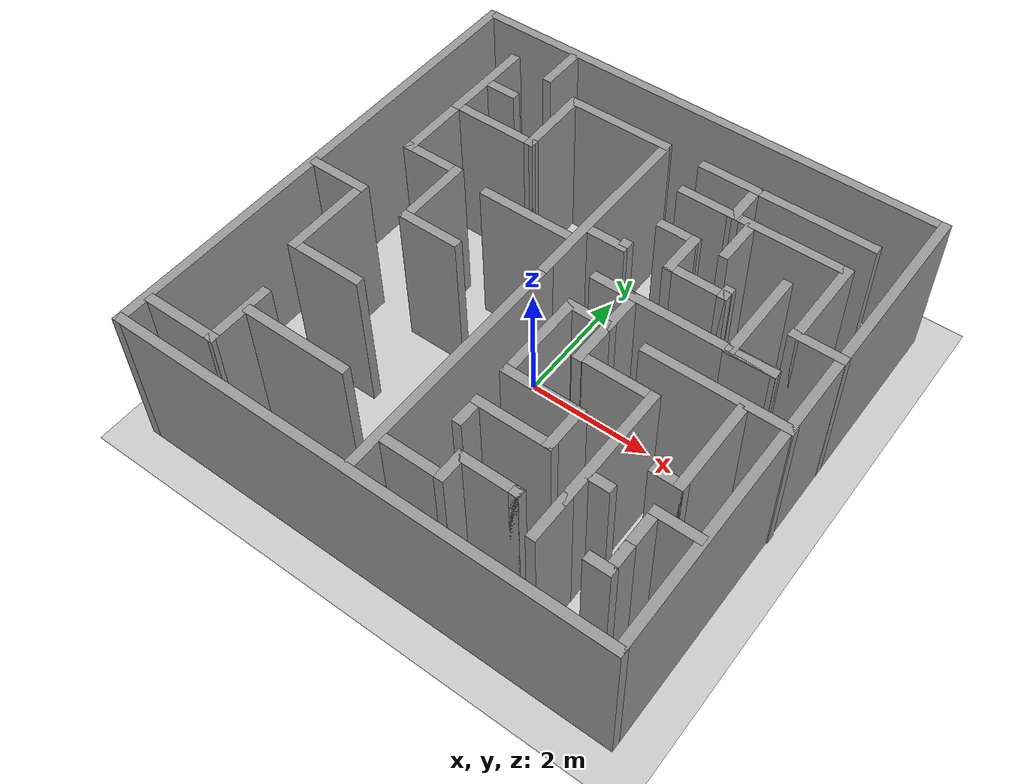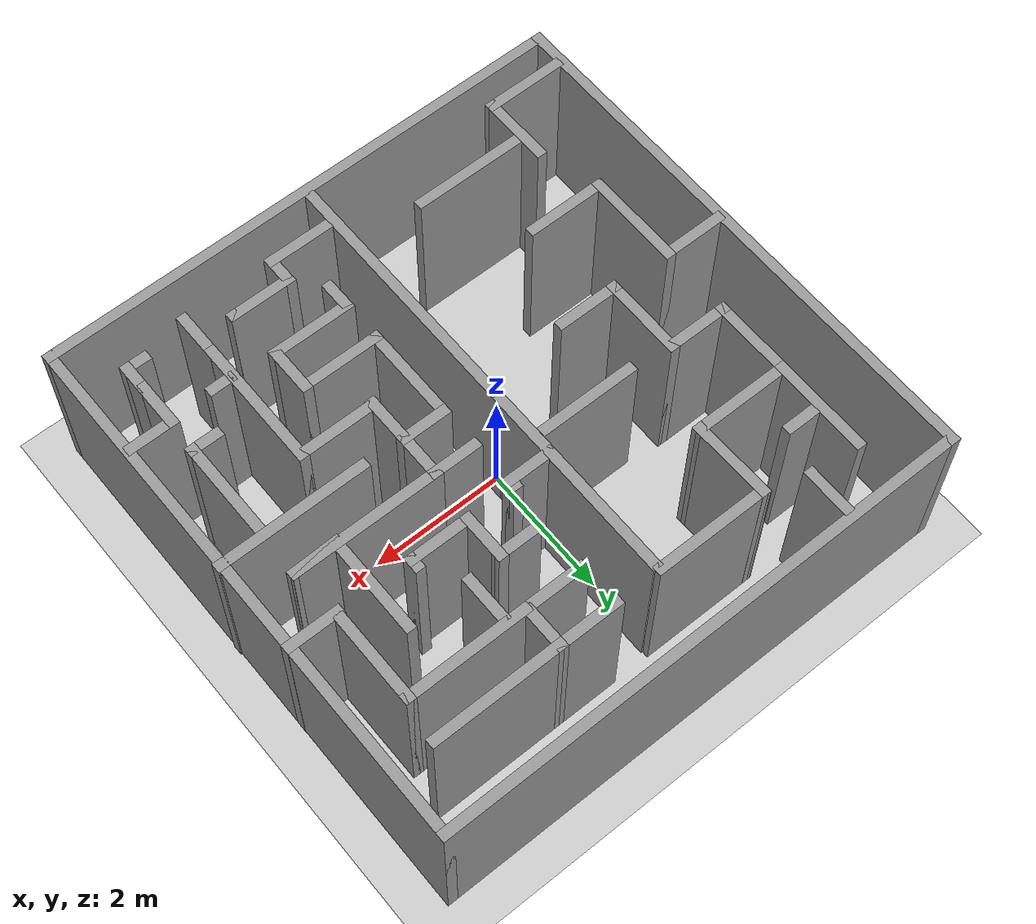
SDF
<sdf version="1.7">
 <world name="default">
  <light name="sun" type="directional">
   <pose>0 0 10 0 -0 0</pose>
   <diffuse>0.8 0.8 0.8 1</diffuse>
   <specular>0.2 0.2 0.2 1</specular>
   <attenuation>
    <range>1000</range>
    <constant>0.9</constant>
    <linear>0.01</linear>
    <quadratic>0.001</quadratic>
   </attenuation>
   <direction>-0.5 0.1 -0.9</direction>
   <spot><inner_angle>0</inner_angle><outer_angle>0</outer_angle><falloff>0</falloff></spot>
  </light>
  <model name="ground_plane">
   <static>1</static>
   <link name="link">
    <collision name="collision">
     <geometry><plane><normal>0 0 1</normal><size>100 100</size></plane></geometry>
     <surface>
      <contact><collide_bitmask>65535</collide_bitmask></contact>
      <friction><ode><mu>100</mu><mu2>50</mu2></ode></friction>
     </surface>
    </collision>
    <visual name="visual">
     <cast_shadows>0</cast_shadows>
     <geometry><plane><normal>0 0 1</normal><size>100 100</size></plane></geometry>
     <material>
      <script><uri>file://media/materials/scripts/gazebo.material</uri><name>Gazebo/Grey</name></script>
     </material>
    </visual>
   </link>
  </model>
  <gravity>0 0 -9.8</gravity>
  <magnetic_field>6e-06 2.3e-05 -4.2e-05</magnetic_field>
  <atmosphere type="adiabatic"/>
  <physics type="ode">
   <max_step_size>0.001</max_step_size>
   <real_time_factor>1</real_time_factor>
   <real_time_update_rate>1000</real_time_update_rate>
  </physics>
  <scene><ambient>0.4 0.4 0.4 1</ambient><background>0.7 0.7 0.7 1</background><shadows>1</shadows></scene>
  <spherical_coordinates>
   <surface_model>EARTH_WGS84</surface_model>
   <latitude_deg>0</latitude_deg>
   <longitude_deg>0</longitude_deg>
   <elevation>0</elevation>
   <heading_deg>0</heading_deg>
  </spherical_coordinates>
  <model name="maze_building">
   <pose>0.106057 0.118959 0 0 -0 0</pose>
   <link name="Wall_101">
    <collision name="Wall_101_Collision">
     <geometry><box><size>1 0.15 2.5</size></box></geometry>
     <pose>0 0 1.25 0 -0 0</pose>
    </collision>
    <visual name="Wall_101_Visual">
     <pose>0 0 1.25 0 -0 0</pose>
     <geometry><box><size>1 0.15 2.5</size></box></geometry>
     <material>
      <script><uri>file://media/materials/scripts/gazebo.material</uri><name>Gazebo/Grey</name></script>
      <ambient>1 1 1 1</ambient>
     </material>
     <meta><layer>0</layer></meta>
    </visual>
    <pose>-3.4489 -0.253857 0 0 -0 0</pose>
   </link>
   <link name="Wall_102">
    <collision name="Wall_102_Collision">
     <geometry><box><size>1.5 0.15 2.5</size></box></geometry>
     <pose>0 0 1.25 0 -0 0</pose>
    </collision>
    <visual name="Wall_102_Visual">
     <pose>0 0 1.25 0 -0 0</pose>
     <geometry><box><size>1.5 0.15 2.5</size></box></geometry>
     <material>
      <script><uri>file://media/materials/scripts/gazebo.material</uri><name>Gazebo/Grey</name></script>
      <ambient>1 1 1 1</ambient>
     </material>
     <meta><layer>0</layer></meta>
    </visual>
    <pose>-3.0239 -0.928857 0 0 -0 -1.5708</pose>
   </link>
   <link name="Wall_103">
    <collision name="Wall_103_Collision">
     <geometry><box><size>1.25 0.15 2.5</size></box></geometry>
     <pose>0 0 1.25 0 -0 0</pose>
    </collision>
    <visual name="Wall_103_Visual">
     <pose>0 0 1.25 0 -0 0</pose>
     <geometry><box><size>1.25 0.15 2.5</size></box></geometry>
     <material>
      <script><uri>file://media/materials/scripts/gazebo.material</uri><name>Gazebo/Grey</name></script>
      <ambient>1 1 1 1</ambient>
     </material>
     <meta><layer>0</layer></meta>
    </visual>
    <pose>-2.4739 -1.60386 0 0 -0 0</pose>
   </link>
   <link name="Wall_111">
    <collision name="Wall_111_Collision">
     <geometry><box><size>1 0.15 2.5</size></box></geometry>
     <pose>0 0 1.25 0 -0 0</pose>
    </collision>
    <visual name="Wall_111_Visual">
     <pose>0 0 1.25 0 -0 0</pose>
     <geometry><box><size>1 0.15 2.5</size></box></geometry>
     <material>
      <script><uri>file://media/materials/scripts/gazebo.material</uri><name>Gazebo/Grey</name></script>
      <ambient>1 1 1 1</ambient>
     </material>
     <meta><layer>0</layer></meta>
    </visual>
    <pose>1.05762 2.99832 0 0 -0 3.14159</pose>
   </link>
   <link name="Wall_113">
    <collision name="Wall_113_Collision">
     <geometry><box><size>0.750003 0.15 2.5</size></box></geometry>
     <pose>0 0 1.25 0 -0 0</pose>
    </collision>
    <visual name="Wall_113_Visual">
     <pose>0 0 1.25 0 -0 0</pose>
     <geometry><box><size>0.750003 0.15 2.5</size></box></geometry>
     <material>
      <script><uri>file://media/materials/scripts/gazebo.material</uri><name>Gazebo/Grey</name></script>
      <ambient>1 1 1 1</ambient>
     </material>
     <meta><layer>0</layer></meta>
    </visual>
    <pose>1.48362 2.69832 0 0 -0 -1.56744</pose>
   </link>
   <link name="Wall_115">
    <collision name="Wall_115_Collision">
     <geometry><box><size>2 0.15 2.5</size></box></geometry>
     <pose>0 0 1.25 0 -0 0</pose>
    </collision>
    <visual name="Wall_115_Visual">
     <pose>0 0 1.25 0 -0 0</pose>
     <geometry><box><size>2 0.15 2.5</size></box></geometry>
     <material>
      <script><uri>file://media/materials/scripts/gazebo.material</uri><name>Gazebo/Grey</name></script>
      <ambient>1 1 1 1</ambient>
     </material>
     <meta><layer>0</layer></meta>
    </visual>
    <pose>2.40762 2.99832 0 0 -0 0</pose>
   </link>
   <link name="Wall_121">
    <collision name="Wall_121_Collision">
     <geometry><box><size>0.75 0.15 2.5</size></box></geometry>
     <pose>0 0 1.25 0 -0 0</pose>
    </collision>
    <visual name="Wall_121_Visual">
     <pose>0 0 1.25 0 -0 0</pose>
     <geometry><box><size>0.75 0.15 2.5</size></box></geometry>
     <material>
      <script><uri>file://media/materials/scripts/gazebo.material</uri><name>Gazebo/Grey</name></script>
      <ambient>1 1 1 1</ambient>
     </material>
     <meta><layer>0</layer></meta>
    </visual>
    <pose>-2.28708 3.50568 0 0 -0 -1.5708</pose>
   </link>
   <link name="Wall_124">
    <collision name="Wall_124_Collision">
     <geometry><box><size>1.87664 0.15 2.5</size></box></geometry>
     <pose>0 0 1.25 0 -0 0</pose>
    </collision>
    <visual name="Wall_124_Visual">
     <pose>0 0 1.25 0 -0 0</pose>
     <geometry><box><size>1.87664 0.15 2.5</size></box></geometry>
     <material>
      <script><uri>file://media/materials/scripts/gazebo.material</uri><name>Gazebo/Grey</name></script>
      <ambient>1 1 1 1</ambient>
     </material>
     <meta><layer>0</layer></meta>
    </visual>
    <pose>2.37879 2.39832 0 0 -0 0</pose>
   </link>
   <link name="Wall_125">
    <collision name="Wall_125_Collision">
     <geometry><box><size>1.5 0.15 2.5</size></box></geometry>
     <pose>0 0 1.25 0 -0 0</pose>
    </collision>
    <visual name="Wall_125_Visual">
     <pose>0 0 1.25 0 -0 0</pose>
     <geometry><box><size>1.5 0.15 2.5</size></box></geometry>
     <material>
      <script><uri>file://media/materials/scripts/gazebo.material</uri><name>Gazebo/Grey</name></script>
      <ambient>1 1 1 1</ambient>
     </material>
     <meta><layer>0</layer></meta>
    </visual>
    <pose>3.24211 1.72332 0 0 -0 -1.5708</pose>
   </link>
   <link name="Wall_126">
    <collision name="Wall_126_Collision">
     <geometry><box><size>0.842522 0.15 2.5</size></box></geometry>
     <pose>0 0 1.25 0 -0 0</pose>
    </collision>
    <visual name="Wall_126_Visual">
     <pose>0 0 1.25 0 -0 0</pose>
     <geometry><box><size>0.842522 0.15 2.5</size></box></geometry>
     <material>
      <script><uri>file://media/materials/scripts/gazebo.material</uri><name>Gazebo/Grey</name></script>
      <ambient>1 1 1 1</ambient>
     </material>
     <meta><layer>0</layer></meta>
    </visual>
    <pose>3.57295 1.04832 0 0 -0 0</pose>
   </link>
   <link name="Wall_128">
    <collision name="Wall_128_Collision">
     <geometry><box><size>0.75 0.15 2.5</size></box></geometry>
     <pose>0 0 1.25 0 -0 0</pose>
    </collision>
    <visual name="Wall_128_Visual">
     <pose>0 0 1.25 0 -0 0</pose>
     <geometry><box><size>0.75 0.15 2.5</size></box></geometry>
     <material>
      <script><uri>file://media/materials/scripts/gazebo.material</uri><name>Gazebo/Grey</name></script>
      <ambient>1 1 1 1</ambient>
     </material>
     <meta><layer>0</layer></meta>
    </visual>
    <pose>1.77858 2.00722 0 0 -0 -1.5708</pose>
   </link>
   <link name="Wall_136">
    <collision name="Wall_136_Collision">
     <geometry><box><size>1.5 0.15 2.5</size></box></geometry>
     <pose>0 0 1.25 0 -0 0</pose>
    </collision>
    <visual name="Wall_136_Visual">
     <pose>0 0 1.25 0 -0 0</pose>
     <geometry><box><size>1.5 0.15 2.5</size></box></geometry>
     <material>
      <script><uri>file://media/materials/scripts/gazebo.material</uri><name>Gazebo/Grey</name></script>
      <ambient>1 1 1 1</ambient>
     </material>
     <meta><layer>0</layer></meta>
    </visual>
    <pose>2.69789 1.03313 0 0 -0 -1.5708</pose>
   </link>
   <link name="Wall_137">
    <collision name="Wall_137_Collision">
     <geometry><box><size>0.768751 0.15 2.5</size></box></geometry>
     <pose>0 0 1.25 0 -0 0</pose>
    </collision>
    <visual name="Wall_137_Visual">
     <pose>0 0 1.25 0 -0 0</pose>
     <geometry><box><size>0.768751 0.15 2.5</size></box></geometry>
     <material>
      <script><uri>file://media/materials/scripts/gazebo.material</uri><name>Gazebo/Grey</name></script>
      <ambient>1 1 1 1</ambient>
     </material>
     <meta><layer>0</layer></meta>
    </visual>
    <pose>3.00676 0.331534 0 0 -0 0.028699</pose>
   </link>
   <link name="Wall_138">
    <collision name="Wall_138_Collision">
     <geometry><box><size>2.25 0.15 2.5</size></box></geometry>
     <pose>0 0 1.25 0 -0 0</pose>
    </collision>
    <visual name="Wall_138_Visual">
     <pose>0 0 1.25 0 -0 0</pose>
     <geometry><box><size>2.25 0.15 2.5</size></box></geometry>
     <material>
      <script><uri>file://media/materials/scripts/gazebo.material</uri><name>Gazebo/Grey</name></script>
      <ambient>1 1 1 1</ambient>
     </material>
     <meta><layer>0</layer></meta>
    </visual>
    <pose>2.26562 0.340401 0 0 -0 3.14159</pose>
   </link>
   <link name="Wall_139">
    <collision name="Wall_139_Collision">
     <geometry><box><size>0.75 0.15 2.5</size></box></geometry>
     <pose>0 0 1.25 0 -0 0</pose>
    </collision>
    <visual name="Wall_139_Visual">
     <pose>0 0 1.25 0 -0 0</pose>
     <geometry><box><size>0.75 0.15 2.5</size></box></geometry>
     <material>
      <script><uri>file://media/materials/scripts/gazebo.material</uri><name>Gazebo/Grey</name></script>
      <ambient>1 1 1 1</ambient>
     </material>
     <meta><layer>0</layer></meta>
    </visual>
    <pose>1.21562 0.040401 0 0 -0 -1.5708</pose>
   </link>
   <link name="Wall_140">
    <collision name="Wall_140_Collision">
     <geometry><box><size>0.75 0.15 2.5</size></box></geometry>
     <pose>0 0 1.25 0 -0 0</pose>
    </collision>
    <visual name="Wall_140_Visual">
     <pose>0 0 1.25 0 -0 0</pose>
     <geometry><box><size>0.75 0.15 2.5</size></box></geometry>
     <material>
      <script><uri>file://media/materials/scripts/gazebo.material</uri><name>Gazebo/Grey</name></script>
      <ambient>1 1 1 1</ambient>
     </material>
     <meta><layer>0</layer></meta>
    </visual>
    <pose>0.915624 -0.259599 0 0 -0 3.14159</pose>
   </link>
   <link name="Wall_141">
    <collision name="Wall_141_Collision">
     <geometry><box><size>1.5 0.15 2.5</size></box></geometry>
     <pose>0 0 1.25 0 -0 0</pose>
    </collision>
    <visual name="Wall_141_Visual">
     <pose>0 0 1.25 0 -0 0</pose>
     <geometry><box><size>1.5 0.15 2.5</size></box></geometry>
     <material>
      <script><uri>file://media/materials/scripts/gazebo.material</uri><name>Gazebo/Grey</name></script>
      <ambient>1 1 1 1</ambient>
     </material>
     <meta><layer>0</layer></meta>
    </visual>
    <pose>0.615624 -0.934599 0 0 -0 -1.5708</pose>
   </link>
   <link name="Wall_142">
    <collision name="Wall_142_Collision">
     <geometry><box><size>1.25 0.15 2.5</size></box></geometry>
     <pose>0 0 1.25 0 -0 0</pose>
    </collision>
    <visual name="Wall_142_Visual">
     <pose>0 0 1.25 0 -0 0</pose>
     <geometry><box><size>1.25 0.15 2.5</size></box></geometry>
     <material>
      <script><uri>file://media/materials/scripts/gazebo.material</uri><name>Gazebo/Grey</name></script>
      <ambient>1 1 1 1</ambient>
     </material>
     <meta><layer>0</layer></meta>
    </visual>
    <pose>1.16562 -1.6096 0 0 -0 0</pose>
   </link>
   <link name="Wall_143">
    <collision name="Wall_143_Collision">
     <geometry><box><size>0.75 0.15 2.5</size></box></geometry>
     <pose>0 0 1.25 0 -0 0</pose>
    </collision>
    <visual name="Wall_143_Visual">
     <pose>0 0 1.25 0 -0 0</pose>
     <geometry><box><size>0.75 0.15 2.5</size></box></geometry>
     <material>
      <script><uri>file://media/materials/scripts/gazebo.material</uri><name>Gazebo/Grey</name></script>
      <ambient>1 1 1 1</ambient>
     </material>
     <meta><layer>0</layer></meta>
    </visual>
    <pose>1.71562 -1.9096 0 0 -0 -1.5708</pose>
   </link>
   <link name="Wall_144">
    <collision name="Wall_144_Collision">
     <geometry><box><size>1.25 0.15 2.5</size></box></geometry>
     <pose>0 0 1.25 0 -0 0</pose>
    </collision>
    <visual name="Wall_144_Visual">
     <pose>0 0 1.25 0 -0 0</pose>
     <geometry><box><size>1.25 0.15 2.5</size></box></geometry>
     <material>
      <script><uri>file://media/materials/scripts/gazebo.material</uri><name>Gazebo/Grey</name></script>
      <ambient>1 1 1 1</ambient>
     </material>
     <meta><layer>0</layer></meta>
    </visual>
    <pose>1.16562 -2.2096 0 0 -0 3.14159</pose>
   </link>
   <link name="Wall_149">
    <collision name="Wall_149_Collision">
     <geometry><box><size>0.780841 0.15 2.5</size></box></geometry>
     <pose>0 0 1.25 0 -0 0</pose>
    </collision>
    <visual name="Wall_149_Visual">
     <pose>0 0 1.25 0 -0 0</pose>
     <geometry><box><size>0.780841 0.15 2.5</size></box></geometry>
     <material>
      <script><uri>file://media/materials/scripts/gazebo.material</uri><name>Gazebo/Grey</name></script>
      <ambient>1 1 1 1</ambient>
     </material>
     <meta><layer>0</layer></meta>
    </visual>
    <pose>1.21562 -0.57502 0 0 -0 -1.5708</pose>
   </link>
   <link name="Wall_152">
    <collision name="Wall_152_Collision">
     <geometry><box><size>1.25 0.15 2.5</size></box></geometry>
     <pose>0 0 1.25 0 -0 0</pose>
    </collision>
    <visual name="Wall_152_Visual">
     <pose>0 0 1.25 0 -0 0</pose>
     <geometry><box><size>1.25 0.15 2.5</size></box></geometry>
     <material>
      <script><uri>file://media/materials/scripts/gazebo.material</uri><name>Gazebo/Grey</name></script>
      <ambient>1 1 1 1</ambient>
     </material>
     <meta><layer>0</layer></meta>
    </visual>
    <pose>1.76562 -0.87502 0 0 -0 0</pose>
   </link>
   <link name="Wall_154">
    <collision name="Wall_154_Collision">
     <geometry><box><size>2.25 0.15 2.5</size></box></geometry>
     <pose>0 0 1.25 0 -0 0</pose>
    </collision>
    <visual name="Wall_154_Visual">
     <pose>0 0 1.25 0 -0 0</pose>
     <geometry><box><size>2.25 0.15 2.5</size></box></geometry>
     <material>
      <script><uri>file://media/materials/scripts/gazebo.material</uri><name>Gazebo/Grey</name></script>
      <ambient>1 1 1 1</ambient>
     </material>
     <meta><layer>0</layer></meta>
    </visual>
    <pose>2.88397 -0.290685 0 0 -0 0</pose>
   </link>
   <link name="Wall_156">
    <collision name="Wall_156_Collision">
     <geometry><box><size>1.5 0.15 2.5</size></box></geometry>
     <pose>0 0 1.25 0 -0 0</pose>
    </collision>
    <visual name="Wall_156_Visual">
     <pose>0 0 1.25 0 -0 0</pose>
     <geometry><box><size>1.5 0.15 2.5</size></box></geometry>
     <material>
      <script><uri>file://media/materials/scripts/gazebo.material</uri><name>Gazebo/Grey</name></script>
      <ambient>1 1 1 1</ambient>
     </material>
     <meta><layer>0</layer></meta>
    </visual>
    <pose>3.29891 -1.07363 0 0 -0 -1.5708</pose>
   </link>
   <link name="Wall_158">
    <collision name="Wall_158_Collision">
     <geometry><box><size>0.5 0.15 2.5</size></box></geometry>
     <pose>0 0 1.25 0 -0 0</pose>
    </collision>
    <visual name="Wall_158_Visual">
     <pose>0 0 1.25 0 -0 0</pose>
     <geometry><box><size>0.5 0.15 2.5</size></box></geometry>
     <material>
      <script><uri>file://media/materials/scripts/gazebo.material</uri><name>Gazebo/Grey</name></script>
      <ambient>1 1 1 1</ambient>
     </material>
     <meta><layer>0</layer></meta>
    </visual>
    <pose>3.12391 -1.74863 0 0 -0 3.14159</pose>
   </link>
   <link name="Wall_160">
    <collision name="Wall_160_Collision">
     <geometry><box><size>2 0.15 2.5</size></box></geometry>
     <pose>0 0 1.25 0 -0 0</pose>
    </collision>
    <visual name="Wall_160_Visual">
     <pose>0 0 1.25 0 -0 0</pose>
     <geometry><box><size>2 0.15 2.5</size></box></geometry>
     <material>
      <script><uri>file://media/materials/scripts/gazebo.material</uri><name>Gazebo/Grey</name></script>
      <ambient>1 1 1 1</ambient>
     </material>
     <meta><layer>0</layer></meta>
    </visual>
    <pose>2.31562 -1.80002 0 0 -0 -1.5708</pose>
   </link>
   <link name="Wall_162">
    <collision name="Wall_162_Collision">
     <geometry><box><size>0.4 0.15 2.5</size></box></geometry>
     <pose>0 0 1.25 0 -0 0</pose>
    </collision>
    <visual name="Wall_162_Visual">
     <pose>0 0 1.25 0 -0 0</pose>
     <geometry><box><size>0.4 0.15 2.5</size></box></geometry>
     <material>
      <script><uri>file://media/materials/scripts/gazebo.material</uri><name>Gazebo/Grey</name></script>
      <ambient>1 1 1 1</ambient>
     </material>
     <meta><layer>0</layer></meta>
    </visual>
    <pose>2.49868 -2.27992 0 0 -0 0</pose>
   </link>
   <link name="Wall_164">
    <collision name="Wall_164_Collision">
     <geometry><box><size>0.75 0.15 2.5</size></box></geometry>
     <pose>0 0 1.25 0 -0 0</pose>
    </collision>
    <visual name="Wall_164_Visual">
     <pose>0 0 1.25 0 -0 0</pose>
     <geometry><box><size>0.75 0.15 2.5</size></box></geometry>
     <material>
      <script><uri>file://media/materials/scripts/gazebo.material</uri><name>Gazebo/Grey</name></script>
      <ambient>1 1 1 1</ambient>
     </material>
     <meta><layer>0</layer></meta>
    </visual>
    <pose>3.56946 -2.23366 0 0 -0 3.14159</pose>
   </link>
   <link name="Wall_171">
    <collision name="Wall_171_Collision">
     <geometry><box><size>0.75 0.15 2.5</size></box></geometry>
     <pose>0 0 1.25 0 -0 0</pose>
    </collision>
    <visual name="Wall_171_Visual">
     <pose>0 0 1.25 0 -0 0</pose>
     <geometry><box><size>0.75 0.15 2.5</size></box></geometry>
     <material>
      <script><uri>file://media/materials/scripts/gazebo.material</uri><name>Gazebo/Grey</name></script>
      <ambient>1 1 1 1</ambient>
     </material>
     <meta><layer>0</layer></meta>
    </visual>
    <pose>3.26946 -2.53366 0 0 -0 -1.5708</pose>
   </link>
   <link name="Wall_174">
    <collision name="Wall_174_Collision">
     <geometry><box><size>0.15 0.15 2.5</size></box></geometry>
     <pose>0 0 1.25 0 -0 0</pose>
    </collision>
    <visual name="Wall_174_Visual">
     <pose>0 0 1.25 0 -0 0</pose>
     <geometry><box><size>0.15 0.15 2.5</size></box></geometry>
     <material>
      <script><uri>file://media/materials/scripts/gazebo.material</uri><name>Gazebo/Grey</name></script>
      <ambient>1 1 1 1</ambient>
     </material>
     <meta><layer>0</layer></meta>
    </visual>
    <pose>0.578634 1.0706 0 0 -0 0</pose>
   </link>
   <link name="Wall_176">
    <collision name="Wall_176_Collision">
     <geometry><box><size>0.5 0.15 2.5</size></box></geometry>
     <pose>0 0 1.25 0 -0 0</pose>
    </collision>
    <visual name="Wall_176_Visual">
     <pose>0 0 1.25 0 -0 0</pose>
     <geometry><box><size>0.5 0.15 2.5</size></box></geometry>
     <material>
      <script><uri>file://media/materials/scripts/gazebo.material</uri><name>Gazebo/Grey</name></script>
      <ambient>1 1 1 1</ambient>
     </material>
     <meta><layer>0</layer></meta>
    </visual>
    <pose>0.615624 -2.3846 0 0 -0 -1.5708</pose>
   </link>
   <link name="Wall_178">
    <collision name="Wall_178_Collision">
     <geometry><box><size>1 0.15 2.5</size></box></geometry>
     <pose>0 0 1.25 0 -0 0</pose>
    </collision>
    <visual name="Wall_178_Visual">
     <pose>0 0 1.25 0 -0 0</pose>
     <geometry><box><size>1 0.15 2.5</size></box></geometry>
     <material>
      <script><uri>file://media/materials/scripts/gazebo.material</uri><name>Gazebo/Grey</name></script>
      <ambient>1 1 1 1</ambient>
     </material>
     <meta><layer>0</layer></meta>
    </visual>
    <pose>0.531884 -3.3285 0 0 -0 0</pose>
   </link>
   <link name="Wall_182">
    <collision name="Wall_182_Collision">
     <geometry><box><size>0.75 0.15 2.5</size></box></geometry>
     <pose>0 0 1.25 0 -0 0</pose>
    </collision>
    <visual name="Wall_182_Visual">
     <pose>0 0 1.25 0 -0 0</pose>
     <geometry><box><size>0.75 0.15 2.5</size></box></geometry>
     <material>
      <script><uri>file://media/materials/scripts/gazebo.material</uri><name>Gazebo/Grey</name></script>
      <ambient>1 1 1 1</ambient>
     </material>
     <meta><layer>0</layer></meta>
    </visual>
    <pose>2.31562 -3.02502 0 0 -0 -1.5708</pose>
   </link>
   <link name="Wall_184">
    <collision name="Wall_184_Collision">
     <geometry><box><size>0.15 0.15 2.5</size></box></geometry>
     <pose>0 0 1.25 0 -0 0</pose>
    </collision>
    <visual name="Wall_184_Visual">
     <pose>0 0 1.25 0 -0 0</pose>
     <geometry><box><size>0.15 0.15 2.5</size></box></geometry>
     <material>
      <script><uri>file://media/materials/scripts/gazebo.material</uri><name>Gazebo/Grey</name></script>
      <ambient>1 1 1 1</ambient>
     </material>
     <meta><layer>0</layer></meta>
    </visual>
    <pose>1.80688 -2.97851 0 0 -0 0</pose>
   </link>
   <link name="Wall_187">
    <collision name="Wall_187_Collision">
     <geometry><box><size>0.5 0.15 2.5</size></box></geometry>
     <pose>0 0 1.25 0 -0 0</pose>
    </collision>
    <visual name="Wall_187_Visual">
     <pose>0 0 1.25 0 -0 0</pose>
     <geometry><box><size>0.5 0.15 2.5</size></box></geometry>
     <material>
      <script><uri>file://media/materials/scripts/gazebo.material</uri><name>Gazebo/Grey</name></script>
      <ambient>1 1 1 1</ambient>
     </material>
     <meta><layer>0</layer></meta>
    </visual>
    <pose>0.956884 -3.1535 0 0 -0 1.5708</pose>
   </link>
   <link name="Wall_188">
    <collision name="Wall_188_Collision">
     <geometry><box><size>1 0.15 2.5</size></box></geometry>
     <pose>0 0 1.25 0 -0 0</pose>
    </collision>
    <visual name="Wall_188_Visual">
     <pose>0 0 1.25 0 -0 0</pose>
     <geometry><box><size>1 0.15 2.5</size></box></geometry>
     <material>
      <script><uri>file://media/materials/scripts/gazebo.material</uri><name>Gazebo/Grey</name></script>
      <ambient>1 1 1 1</ambient>
     </material>
     <meta><layer>0</layer></meta>
    </visual>
    <pose>1.38188 -2.97851 0 0 -0 0</pose>
   </link>
   <link name="Wall_190">
    <collision name="Wall_190_Collision">
     <geometry><box><size>0.5 0.15 2.5</size></box></geometry>
     <pose>0 0 1.25 0 -0 0</pose>
    </collision>
    <visual name="Wall_190_Visual">
     <pose>0 0 1.25 0 -0 0</pose>
     <geometry><box><size>0.5 0.15 2.5</size></box></geometry>
     <material>
      <script><uri>file://media/materials/scripts/gazebo.material</uri><name>Gazebo/Grey</name></script>
      <ambient>1 1 1 1</ambient>
     </material>
     <meta><layer>0</layer></meta>
    </visual>
    <pose>3.26946 -3.00866 0 0 -0 -1.5708</pose>
   </link>
   <link name="Wall_195">
    <collision name="Wall_195_Collision">
     <geometry><box><size>0.75 0.15 2.5</size></box></geometry>
     <pose>0 0 1.25 0 -0 0</pose>
    </collision>
    <visual name="Wall_195_Visual">
     <pose>0 0 1.25 0 -0 0</pose>
     <geometry><box><size>0.75 0.15 2.5</size></box></geometry>
     <material>
      <script><uri>file://media/materials/scripts/gazebo.material</uri><name>Gazebo/Grey</name></script>
      <ambient>1 1 1 1</ambient>
     </material>
     <meta><layer>0</layer></meta>
    </visual>
    <pose>0.278634 0.991246 0 0 -0 3.14159</pose>
   </link>
   <link name="Wall_199">
    <collision name="Wall_199_Collision">
     <geometry><box><size>0.75 0.15 2.5</size></box></geometry>
     <pose>0 0 1.25 0 -0 0</pose>
    </collision>
    <visual name="Wall_199_Visual">
     <pose>0 0 1.25 0 -0 0</pose>
     <geometry><box><size>0.75 0.15 2.5</size></box></geometry>
     <material>
      <script><uri>file://media/materials/scripts/gazebo.material</uri><name>Gazebo/Grey</name></script>
      <ambient>1 1 1 1</ambient>
     </material>
     <meta><layer>0</layer></meta>
    </visual>
    <pose>0.915624 0.340401 0 0 -0 3.14159</pose>
   </link>
   <link name="Wall_204">
    <collision name="Wall_204_Collision">
     <geometry><box><size>0.651 0.15 2.5</size></box></geometry>
     <pose>0 0 1.25 0 -0 0</pose>
    </collision>
    <visual name="Wall_204_Visual">
     <pose>0 0 1.25 0 -0 0</pose>
     <geometry><box><size>0.651 0.15 2.5</size></box></geometry>
     <material>
      <script><uri>file://media/materials/scripts/gazebo.material</uri><name>Gazebo/Grey</name></script>
      <ambient>1 1 1 1</ambient>
     </material>
     <meta><layer>0</layer></meta>
    </visual>
    <pose>1.04444 1.67004 0 0 -0 0</pose>
   </link>
   <link name="Wall_205">
    <collision name="Wall_205_Collision">
     <geometry><box><size>0.75 0.15 2.5</size></box></geometry>
     <pose>0 0 1.25 0 -0 0</pose>
    </collision>
    <visual name="Wall_205_Visual">
     <pose>0 0 1.25 0 -0 0</pose>
     <geometry><box><size>0.75 0.15 2.5</size></box></geometry>
     <material>
      <script><uri>file://media/materials/scripts/gazebo.material</uri><name>Gazebo/Grey</name></script>
      <ambient>1 1 1 1</ambient>
     </material>
     <meta><layer>0</layer></meta>
    </visual>
    <pose>1.29483 1.37017 0 0 -0 -1.57118</pose>
   </link>
   <link name="Wall_206">
    <collision name="Wall_206_Collision">
     <geometry><box><size>1 0.15 2.5</size></box></geometry>
     <pose>0 0 1.25 0 -0 0</pose>
    </collision>
    <visual name="Wall_206_Visual">
     <pose>0 0 1.25 0 -0 0</pose>
     <geometry><box><size>1 0.15 2.5</size></box></geometry>
     <material>
      <script><uri>file://media/materials/scripts/gazebo.material</uri><name>Gazebo/Grey</name></script>
      <ambient>1 1 1 1</ambient>
     </material>
     <meta><layer>0</layer></meta>
    </visual>
    <pose>1.71971 1.07029 0 0 -0 0</pose>
   </link>
   <link name="Wall_207">
    <collision name="Wall_207_Collision">
     <geometry><box><size>0.25 0.15 2.5</size></box></geometry>
     <pose>0 0 1.25 0 -0 0</pose>
    </collision>
    <visual name="Wall_207_Visual">
     <pose>0 0 1.25 0 -0 0</pose>
     <geometry><box><size>0.25 0.15 2.5</size></box></geometry>
     <material>
      <script><uri>file://media/materials/scripts/gazebo.material</uri><name>Gazebo/Grey</name></script>
      <ambient>1 1 1 1</ambient>
     </material>
     <meta><layer>0</layer></meta>
    </visual>
    <pose>2.14471 1.12029 0 0 -0 1.5708</pose>
   </link>
   <link name="Wall_210">
    <collision name="Wall_210_Collision">
     <geometry><box><size>0.4 0.15 2.5</size></box></geometry>
     <pose>0 0 1.25 0 -0 0</pose>
    </collision>
    <visual name="Wall_210_Visual">
     <pose>0 0 1.25 0 -0 0</pose>
     <geometry><box><size>0.4 0.15 2.5</size></box></geometry>
     <material>
      <script><uri>file://media/materials/scripts/gazebo.material</uri><name>Gazebo/Grey</name></script>
      <ambient>1 1 1 1</ambient>
     </material>
     <meta><layer>0</layer></meta>
    </visual>
    <pose>3.14446 -3.18366 0 0 -0 3.14159</pose>
   </link>
   <link name="Wall_212">
    <collision name="Wall_212_Collision">
     <geometry><box><size>1 0.15 2.5</size></box></geometry>
     <pose>0 0 1.25 0 -0 0</pose>
    </collision>
    <visual name="Wall_212_Visual">
     <pose>0 0 1.25 0 -0 0</pose>
     <geometry><box><size>1 0.15 2.5</size></box></geometry>
     <material>
      <script><uri>file://media/materials/scripts/gazebo.material</uri><name>Gazebo/Grey</name></script>
      <ambient>1 1 1 1</ambient>
     </material>
     <meta><layer>0</layer></meta>
    </visual>
    <pose>1.09047 2.39832 0 0 -0 3.14159</pose>
   </link>
   <link name="Wall_55">
    <collision name="Wall_55_Collision">
     <geometry><box><size>8 0.15 2.5</size></box></geometry>
     <pose>0 0 1.25 0 -0 0</pose>
    </collision>
    <visual name="Wall_55_Visual">
     <pose>0 0 1.25 0 -0 0</pose>
     <geometry><box><size>8 0.15 2.5</size></box></geometry>
     <material>
      <script><uri>file://media/materials/scripts/gazebo.material</uri><name>Gazebo/Grey</name></script>
      <ambient>1 1 1 1</ambient>
     </material>
     <meta><layer>0</layer></meta>
    </visual>
    <pose>3.91603 0 0 0 -0 -1.5708</pose>
   </link>
   <link name="Wall_56">
    <collision name="Wall_56_Collision">
     <geometry><box><size>8 0.15 2.5</size></box></geometry>
     <pose>0 0 1.25 0 -0 0</pose>
    </collision>
    <visual name="Wall_56_Visual">
     <pose>0 0 1.25 0 -0 0</pose>
     <geometry><box><size>8 0.15 2.5</size></box></geometry>
     <material>
      <script><uri>file://media/materials/scripts/gazebo.material</uri><name>Gazebo/Grey</name></script>
      <ambient>1 1 1 1</ambient>
     </material>
     <meta><layer>0</layer></meta>
    </visual>
    <pose>-0.008969 -3.925 0 0 -0 3.14159</pose>
   </link>
   <link name="Wall_57">
    <collision name="Wall_57_Collision">
     <geometry><box><size>8 0.15 2.5</size></box></geometry>
     <pose>0 0 1.25 0 -0 0</pose>
    </collision>
    <visual name="Wall_57_Visual">
     <pose>0 0 1.25 0 -0 0</pose>
     <geometry><box><size>8 0.15 2.5</size></box></geometry>
     <material>
      <script><uri>file://media/materials/scripts/gazebo.material</uri><name>Gazebo/Grey</name></script>
      <ambient>1 1 1 1</ambient>
     </material>
     <meta><layer>0</layer></meta>
    </visual>
    <pose>-3.93397 0 0 0 -0 1.5708</pose>
   </link>
   <link name="Wall_58">
    <collision name="Wall_58_Collision">
     <geometry><box><size>8 0.15 2.5</size></box></geometry>
     <pose>0 0 1.25 0 -0 0</pose>
    </collision>
    <visual name="Wall_58_Visual">
     <pose>0 0 1.25 0 -0 0</pose>
     <geometry><box><size>8 0.15 2.5</size></box></geometry>
     <material>
      <script><uri>file://media/materials/scripts/gazebo.material</uri><name>Gazebo/Grey</name></script>
      <ambient>1 1 1 1</ambient>
     </material>
     <meta><layer>0</layer></meta>
    </visual>
    <pose>-0.008969 3.925 0 0 -0 0</pose>
   </link>
   <link name="Wall_62">
    <collision name="Wall_62_Collision">
     <geometry><box><size>3 0.15 2.5</size></box></geometry>
     <pose>0 0 1.25 0 -0 0</pose>
    </collision>
    <visual name="Wall_62_Visual">
     <pose>0 0 1.25 0 -0 0</pose>
     <geometry><box><size>3 0.15 2.5</size></box></geometry>
     <material>
      <script><uri>file://media/materials/scripts/gazebo.material</uri><name>Gazebo/Grey</name></script>
      <ambient>1 1 1 1</ambient>
     </material>
     <meta><layer>0</layer></meta>
    </visual>
    <pose>-0.034537 1.4847 0 0 -0 1.5708</pose>
   </link>
   <link name="Wall_64">
    <collision name="Wall_64_Collision">
     <geometry><box><size>4 0.15 2.5</size></box></geometry>
     <pose>0 0 1.25 0 -0 0</pose>
    </collision>
    <visual name="Wall_64_Visual">
     <pose>0 0 1.25 0 -0 0</pose>
     <geometry><box><size>4 0.15 2.5</size></box></geometry>
     <material>
      <script><uri>file://media/materials/scripts/gazebo.material</uri><name>Gazebo/Grey</name></script>
      <ambient>1 1 1 1</ambient>
     </material>
     <meta><layer>0</layer></meta>
    </visual>
    <pose>-0.034537 -1.8653 0 0 -0 -1.5708</pose>
   </link>
   <link name="Wall_68">
    <collision name="Wall_68_Collision">
     <geometry><box><size>1.75 0.15 2.5</size></box></geometry>
     <pose>0 0 1.25 0 -0 0</pose>
    </collision>
    <visual name="Wall_68_Visual">
     <pose>0 0 1.25 0 -0 0</pose>
     <geometry><box><size>1.75 0.15 2.5</size></box></geometry>
     <material>
      <script><uri>file://media/materials/scripts/gazebo.material</uri><name>Gazebo/Grey</name></script>
      <ambient>1 1 1 1</ambient>
     </material>
     <meta><layer>0</layer></meta>
    </visual>
    <pose>-0.858685 3.00266 0 0 -0 0</pose>
   </link>
   <link name="Wall_70">
    <collision name="Wall_70_Collision">
     <geometry><box><size>1.25055 0.15 2.5</size></box></geometry>
     <pose>0 0 1.25 0 -0 0</pose>
    </collision>
    <visual name="Wall_70_Visual">
     <pose>0 0 1.25 0 -0 0</pose>
     <geometry><box><size>1.25055 0.15 2.5</size></box></geometry>
     <material>
      <script><uri>file://media/materials/scripts/gazebo.material</uri><name>Gazebo/Grey</name></script>
      <ambient>1 1 1 1</ambient>
     </material>
     <meta><layer>0</layer></meta>
    </visual>
    <pose>-1.66738 2.45267 0 0 -0 -1.55499</pose>
   </link>
   <link name="Wall_71">
    <collision name="Wall_71_Collision">
     <geometry><box><size>1.5 0.15 2.5</size></box></geometry>
     <pose>0 0 1.25 0 -0 0</pose>
    </collision>
    <visual name="Wall_71_Visual">
     <pose>0 0 1.25 0 -0 0</pose>
     <geometry><box><size>1.5 0.15 2.5</size></box></geometry>
     <material>
      <script><uri>file://media/materials/scripts/gazebo.material</uri><name>Gazebo/Grey</name></script>
      <ambient>1 1 1 1</ambient>
     </material>
     <meta><layer>0</layer></meta>
    </visual>
    <pose>-2.33369 1.90267 0 0 -0 3.14159</pose>
   </link>
   <link name="Wall_73">
    <collision name="Wall_73_Collision">
     <geometry><box><size>1.25 0.15 2.5</size></box></geometry>
     <pose>0 0 1.25 0 -0 0</pose>
    </collision>
    <visual name="Wall_73_Visual">
     <pose>0 0 1.25 0 -0 0</pose>
     <geometry><box><size>1.25 0.15 2.5</size></box></geometry>
     <material>
      <script><uri>file://media/materials/scripts/gazebo.material</uri><name>Gazebo/Grey</name></script>
      <ambient>1 1 1 1</ambient>
     </material>
     <meta><layer>0</layer></meta>
    </visual>
    <pose>-3.00868 1.35267 0 0 -0 -1.5708</pose>
   </link>
   <link name="Wall_77">
    <collision name="Wall_77_Collision">
     <geometry><box><size>1 0.15 2.5</size></box></geometry>
     <pose>0 0 1.25 0 -0 0</pose>
    </collision>
    <visual name="Wall_77_Visual">
     <pose>0 0 1.25 0 -0 0</pose>
     <geometry><box><size>1 0.15 2.5</size></box></geometry>
     <material>
      <script><uri>file://media/materials/scripts/gazebo.material</uri><name>Gazebo/Grey</name></script>
      <ambient>1 1 1 1</ambient>
     </material>
     <meta><layer>0</layer></meta>
    </visual>
    <pose>-2.58369 0.802665 0 0 -0 0</pose>
   </link>
   <link name="Wall_78">
    <collision name="Wall_78_Collision">
     <geometry><box><size>1.25 0.15 2.5</size></box></geometry>
     <pose>0 0 1.25 0 -0 0</pose>
    </collision>
    <visual name="Wall_78_Visual">
     <pose>0 0 1.25 0 -0 0</pose>
     <geometry><box><size>1.25 0.15 2.5</size></box></geometry>
     <material>
      <script><uri>file://media/materials/scripts/gazebo.material</uri><name>Gazebo/Grey</name></script>
      <ambient>1 1 1 1</ambient>
     </material>
     <meta><layer>0</layer></meta>
    </visual>
    <pose>-2.15869 0.252665 0 0 -0 -1.5708</pose>
   </link>
   <link name="Wall_79">
    <collision name="Wall_79_Collision">
     <geometry><box><size>1 0.15 2.5</size></box></geometry>
     <pose>0 0 1.25 0 -0 0</pose>
    </collision>
    <visual name="Wall_79_Visual">
     <pose>0 0 1.25 0 -0 0</pose>
     <geometry><box><size>1 0.15 2.5</size></box></geometry>
     <material>
      <script><uri>file://media/materials/scripts/gazebo.material</uri><name>Gazebo/Grey</name></script>
      <ambient>1 1 1 1</ambient>
     </material>
     <meta><layer>0</layer></meta>
    </visual>
    <pose>-1.73368 -0.297335 0 0 -0 0</pose>
   </link>
   <link name="Wall_81">
    <collision name="Wall_81_Collision">
     <geometry><box><size>1.23661 0.15 2.5</size></box></geometry>
     <pose>0 0 1.25 0 -0 0</pose>
    </collision>
    <visual name="Wall_81_Visual">
     <pose>0 0 1.25 0 -0 0</pose>
     <geometry><box><size>1.23661 0.15 2.5</size></box></geometry>
     <material>
      <script><uri>file://media/materials/scripts/gazebo.material</uri><name>Gazebo/Grey</name></script>
      <ambient>1 1 1 1</ambient>
     </material>
     <meta><layer>0</layer></meta>
    </visual>
    <pose>-3.29582 -3.45051 0 0 -0 0.00617</pose>
   </link>
   <link name="Wall_82">
    <collision name="Wall_82_Collision">
     <geometry><box><size>1.1 0.15 2.5</size></box></geometry>
     <pose>0 0 1.25 0 -0 0</pose>
    </collision>
    <visual name="Wall_82_Visual">
     <pose>0 0 1.25 0 -0 0</pose>
     <geometry><box><size>1.1 0.15 2.5</size></box></geometry>
     <material>
      <script><uri>file://media/materials/scripts/gazebo.material</uri><name>Gazebo/Grey</name></script>
      <ambient>1 1 1 1</ambient>
     </material>
     <meta><layer>0</layer></meta>
    </visual>
    <pose>-2.75253 -2.97215 0 0 -0 1.5708</pose>
   </link>
   <link name="Wall_86">
    <collision name="Wall_86_Collision">
     <geometry><box><size>1.75 0.15 2.5</size></box></geometry>
     <pose>0 0 1.25 0 -0 0</pose>
    </collision>
    <visual name="Wall_86_Visual">
     <pose>0 0 1.25 0 -0 0</pose>
     <geometry><box><size>1.75 0.15 2.5</size></box></geometry>
     <material>
      <script><uri>file://media/materials/scripts/gazebo.material</uri><name>Gazebo/Grey</name></script>
      <ambient>1 1 1 1</ambient>
     </material>
     <meta><layer>0</layer></meta>
    </visual>
    <pose>-1.8739 -2.82777 0 0 -0 0</pose>
   </link>
   <link name="Wall_89">
    <collision name="Wall_89_Collision">
     <geometry><box><size>1.5 0.15 2.5</size></box></geometry>
     <pose>0 0 1.25 0 -0 0</pose>
    </collision>
    <visual name="Wall_89_Visual">
     <pose>0 0 1.25 0 -0 0</pose>
     <geometry><box><size>1.5 0.15 2.5</size></box></geometry>
     <material>
      <script><uri>file://media/materials/scripts/gazebo.material</uri><name>Gazebo/Grey</name></script>
      <ambient>1 1 1 1</ambient>
     </material>
     <meta><layer>0</layer></meta>
    </visual>
    <pose>-0.861946 0.720056 0 0 -0 3.14159</pose>
   </link>
   <link name="Wall_94">
    <collision name="Wall_94_Collision">
     <geometry><box><size>1.5 0.15 2.5</size></box></geometry>
     <pose>0 0 1.25 0 -0 0</pose>
    </collision>
    <visual name="Wall_94_Visual">
     <pose>0 0 1.25 0 -0 0</pose>
     <geometry><box><size>1.5 0.15 2.5</size></box></geometry>
     <material>
      <script><uri>file://media/materials/scripts/gazebo.material</uri><name>Gazebo/Grey</name></script>
      <ambient>1 1 1 1</ambient>
     </material>
     <meta><layer>0</layer></meta>
    </visual>
    <pose>-3.00868 2.57767 0 0 -0 1.5708</pose>
   </link>
   <link name="Wall_96">
    <collision name="Wall_96_Collision">
     <geometry><box><size>0.5 0.15 2.5</size></box></geometry>
     <pose>0 0 1.25 0 -0 0</pose>
    </collision>
    <visual name="Wall_96_Visual">
     <pose>0 0 1.25 0 -0 0</pose>
     <geometry><box><size>0.5 0.15 2.5</size></box></geometry>
     <material>
      <script><uri>file://media/materials/scripts/gazebo.material</uri><name>Gazebo/Grey</name></script>
      <ambient>1 1 1 1</ambient>
     </material>
     <meta><layer>0</layer></meta>
    </visual>
    <pose>-2.69021 2.58093 0 0 -0 0</pose>
   </link>
   <static>1</static>
  </model>
 </world>
</sdf>
